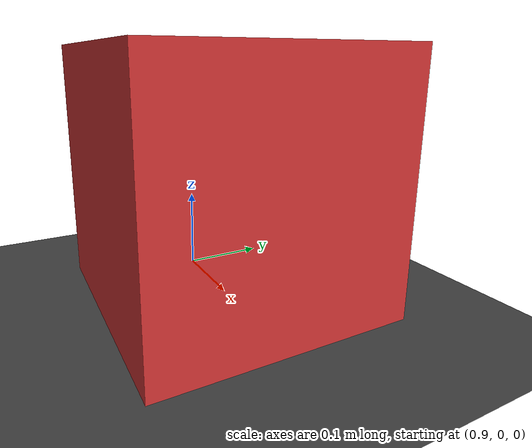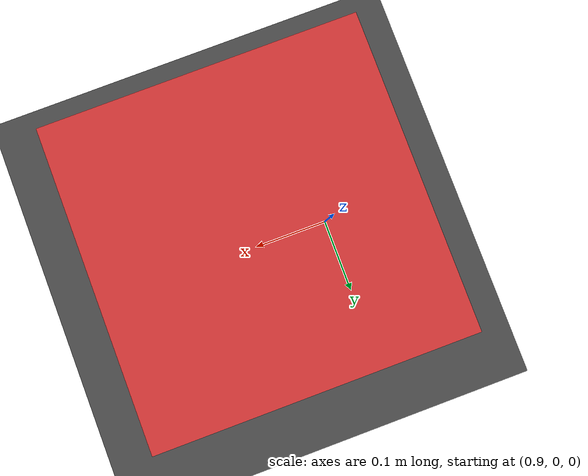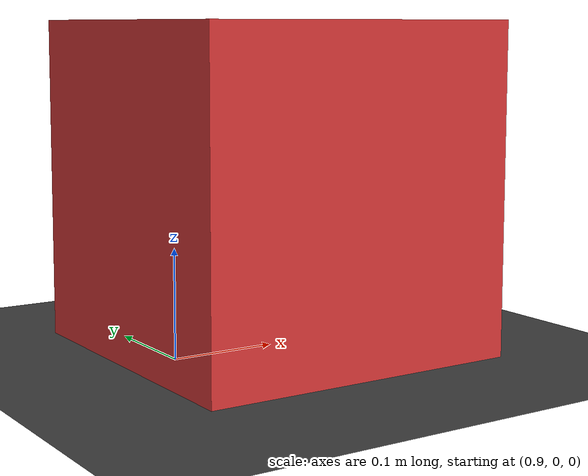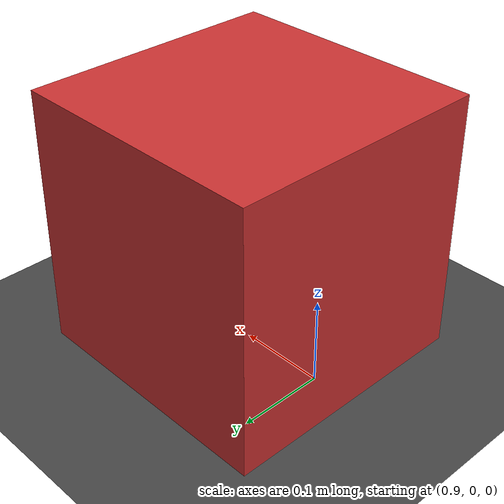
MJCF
<mujoco model="empty_world">
  <compiler angle="radian"/>

  <option timestep="0.002" gravity="0 0 -9.81" cone="elliptic"/>

  <visual>
    <global azimuth="135" elevation="-25"/>
    <quality shadowsize="2048"/>
  </visual>

  <asset>
    <texture type="2d" name="groundplane" builtin="checker"
             rgb1="0.25 0.25 0.25" rgb2="0.3 0.3 0.3"
             width="512" height="512" mark="edge" markrgb="0.2 0.2 0.2"/>
    <material name="groundplane" texture="groundplane"
              texrepeat="5 5" texuniform="true" reflectance="0.1"/>
  </asset>

  <worldbody>
    <light name="top_light" pos="0 0 3" dir="0 0 -1"
           diffuse="0.8 0.8 0.8" specular="0.3 0.3 0.3" castshadow="true"/>
    <light name="side_light" pos="2 -2 2" dir="-1 1 -1"
           diffuse="0.4 0.4 0.4" specular="0.1 0.1 0.1"/>
    <camera name="tracking" pos="0.6 -0.8 0.5"
            xyaxes="0.8 0.6 0 -0.25 0.33 0.91" mode="trackcom"/>

    <geom name="ground" type="plane" size="5 5 0.1" material="groundplane"
          condim="4" friction="1.0 0.5 0.01"/>

    <!-- Add obstacles here for testing -->
    <body name="box_obstacle" pos="1.0 0 0.15">
      <geom type="box" size="0.15 0.15 0.15" rgba="0.8 0.2 0.2 1" mass="1.0"/>
    </body>
  </worldbody>
</mujoco>
